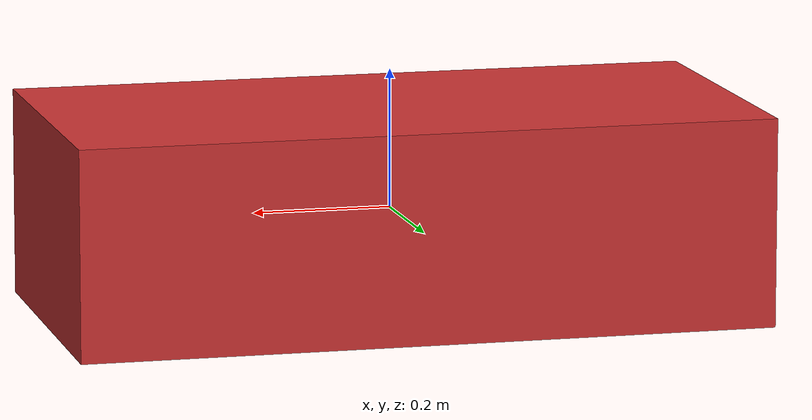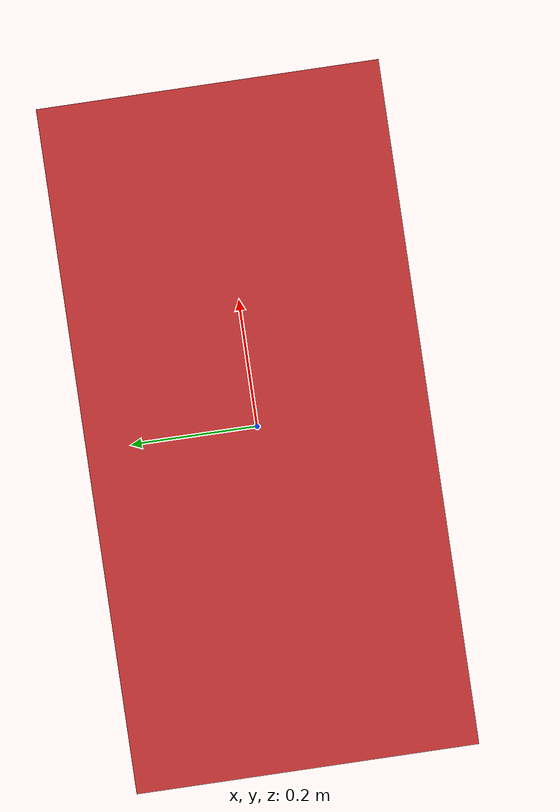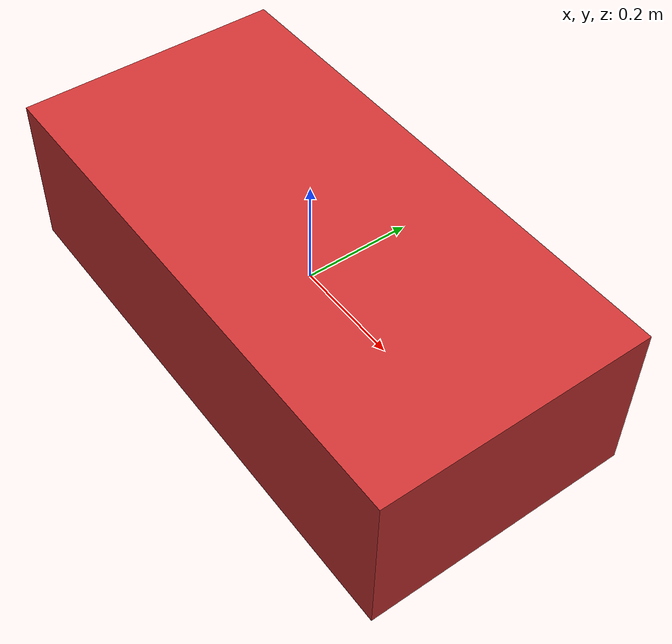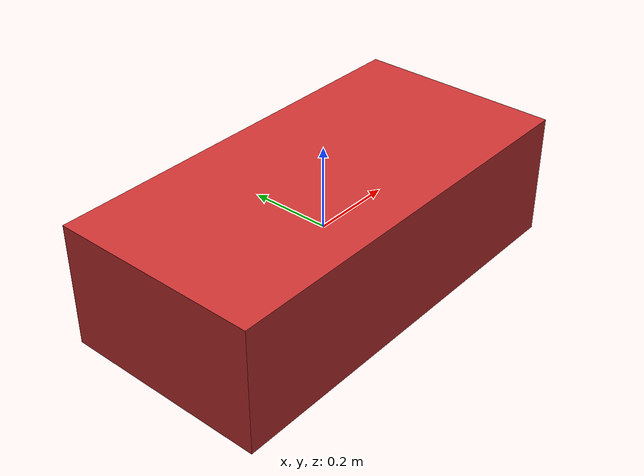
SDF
<sdf version="1.5">
  <model name="jake">
    <plugin
        filename="gz-sim-diff-drive-system"
        name="gz::sim::systems::DiffDrive">
        <left_joint>fl_wheel_joint</left_joint>
        <right_joint>fr_wheel_joint</right_joint>
        <wheel_separation>1.2</wheel_separation>
        <wheel_radius>1</wheel_radius>
        <odom_publish_frequency>1</odom_publish_frequency>
        <topic>cmd_vel</topic>
    </plugin>
    <!-- Body of the robot -->
    <link name="body">
      <visual name="body_visual"> <!-- Replace with .STL -->
        <geometry>
          <box>
            <size>1 0.5 0.3</size> <!-- Length x Width x Height -->
          </box>
        </geometry>
        <material>
          <ambient>0.8 0.2 0.2 1</ambient> <!-- Color Red -->
        </material>
      </visual>
      <collision name="body_collision">
        <geometry>
          <box>
            <size>1 0.5 0.3</size> <!-- Length x Width x Height -->
          </box>
        </geometry>
      </collision>
      <inertial>
        <mass>5.0</mass>
        <inertia>
          <ixx>0.1</ixx>
          <iyy>0.1</iyy>
          <izz>0.2</izz>
        </inertia>
      </inertial>
    </link>

    <!-- Actuated wheels -->
    <!-- Front left wheel -->
    <link name="fl_wheel">
      <visual name="fl_wheel_visual">
        <geometry>
          <cylinder>
            <radius>0.1</radius>
            <length>0.1</length>
          </cylinder>
        </geometry>
        <material>
          <ambient>0.8 0.2 0.2 1</ambient> <!-- Color Red -->
        </material>
      </visual>
      <collision name="fl_wheel_collision">
        <geometry>
          <cylinder>
            <radius>0.1</radius>
            <length>0.1</length>
          </cylinder>
        </geometry>
      </collision>
      <inertial>
        <mass>0.5</mass>
        <inertia>
          <ixx>0.002</ixx>
          <iyy>0.002</iyy>
          <izz>0.004</izz>
        </inertia>
      </inertial>
    </link>

    <joint name="fl_wheel_joint" type="revolute">
      <parent>body</parent>
      <child>fl_wheel</child>
      <axis>
        <xyz>0 1 0</xyz> <!-- Revolute axis (rotation around Y-axis) -->
      </axis>
      <limit>
        <lower>-1.0</lower>
        <upper>1.0</upper>
        <effort>10</effort>
        <velocity>1.0</velocity>
      </limit>
    </joint>

    <!-- Front right wheel -->
    <link name="fr_wheel">
      <visual name="fr_wheel_visual">
        <geometry>
          <cylinder>
            <radius>0.1</radius>
            <length>0.1</length>
          </cylinder>
        </geometry>
        <material>
          <ambient>0.8 0.2 0.2 1</ambient> <!-- Color Red -->
        </material>
      </visual>
      <collision name="fr_wheel_collision">
        <geometry>
          <cylinder>
            <radius>0.1</radius>
            <length>0.1</length>
          </cylinder>
        </geometry>
      </collision>
      <inertial>
        <mass>0.5</mass>
        <inertia>
          <ixx>0.002</ixx>
          <iyy>0.002</iyy>
          <izz>0.004</izz>
        </inertia>
      </inertial>
    </link>

    <joint name="fr_wheel_joint" type="revolute">
      <parent>body</parent>
      <child>fr_wheel</child>
      <axis>
        <xyz>0 1 0</xyz> <!-- Revolute axis (rotation around Y-axis) -->
      </axis>
      <limit>
        <lower>-1.0</lower>
        <upper>1.0</upper>
        <effort>10</effort>
        <velocity>1.0</velocity>
      </limit>
    </joint>

    <!-- Passive wheels -->
    <!-- Rear left wheel -->
    <link name="rl_wheel">
      <visual name="rl_wheel_visual">
        <geometry>
          <cylinder>
            <radius>0.1</radius>
            <length>0.1</length>
          </cylinder>
        </geometry>
        <material>
          <ambient>0.8 0.2 0.2 1</ambient> <!-- Color Red -->
        </material>
      </visual>
      <collision name="rl_wheel_collision">
        <geometry>
          <cylinder>
            <radius>0.1</radius>
            <length>0.1</length>
          </cylinder>
        </geometry>
      </collision>
      <inertial>
        <mass>0.5</mass>
        <inertia>
          <ixx>0.002</ixx>
          <iyy>0.002</iyy>
          <izz>0.004</izz>
        </inertia>
      </inertial>
    </link>

    <joint name="rl_wheel_joint" type="fixed">
      <parent>body</parent>
      <child>rl_wheel</child>
      <pose>0.5 0.25 0.0 0 0 0</pose> <!-- Position relative to body -->
    </joint>

    <!-- Rear right wheel -->
    <link name="rr_wheel">
      <visual name="rr_wheel_visual">
        <geometry>
          <cylinder>
            <radius>0.1</radius>
            <length>0.1</length>
          </cylinder>
        </geometry>
        <material>
          <ambient>0.8 0.2 0.2 1</ambient> <!-- Color Red -->
        </material>
      </visual>
      <collision name="rr_wheel_collision">
        <geometry>
          <cylinder>
            <radius>0.1</radius>
            <length>0.1</length>
          </cylinder>
        </geometry>
      </collision>
      <inertial>
        <mass>0.5</mass>
        <inertia>
          <ixx>0.002</ixx>
          <iyy>0.002</iyy>
          <izz>0.004</izz>
        </inertia>
      </inertial>
    </link>

    <joint name="rr_wheel_joint" type="fixed">
      <parent>body</parent>
      <child>rr_wheel</child>
      <pose>0.5 -0.25 0.0 0 0 0</pose> <!-- Position relative to body -->
    </joint>

  </model>
</sdf>
